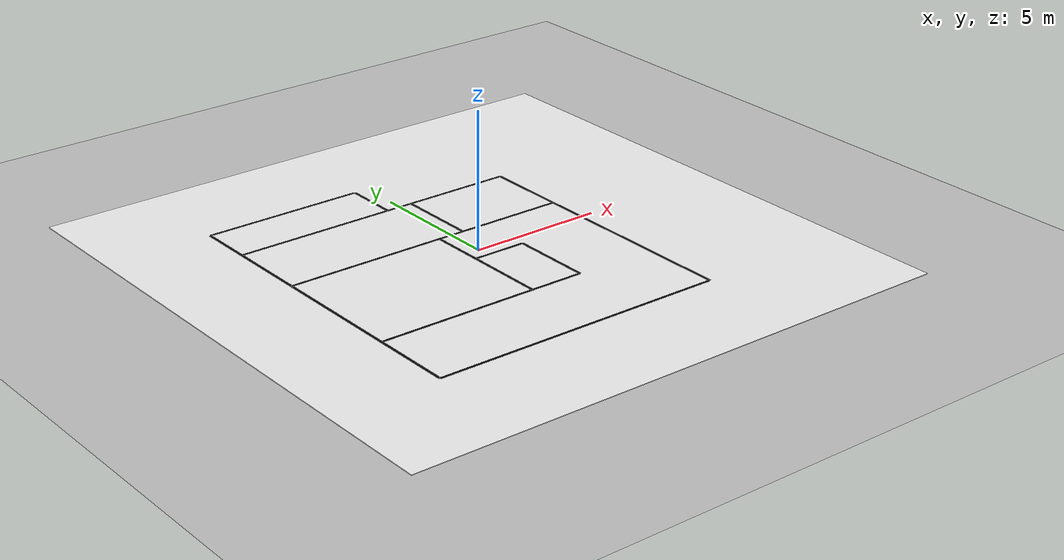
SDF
<sdf version='1.10'>
  <world name='empty_world'>
    <physics name='1ms' type='ignored'>
      <max_step_size>0.001</max_step_size>
      <real_time_factor>1</real_time_factor>
      <real_time_update_rate>1000</real_time_update_rate>
    </physics>
    <plugin name='gz::sim::systems::Physics' filename='gz-sim-physics-system'/>
    <plugin name='gz::sim::systems::UserCommands' filename='gz-sim-user-commands-system'/>
    <plugin name='gz::sim::systems::SceneBroadcaster' filename='gz-sim-scene-broadcaster-system'/>
    <plugin name='gz::sim::systems::Contact' filename='gz-sim-contact-system'/>
    <plugin name='gz::sim::systems::Sensors' filename='gz-sim-sensors-system'>
      <render_engine>ogre2</render_engine>
    </plugin>
    <gravity>0 0 -9.8000000000000007</gravity>
    <magnetic_field>5.5644999999999998e-06 2.2875799999999999e-05 -4.2388400000000002e-05</magnetic_field>
    <atmosphere type='adiabatic'/>
    <scene>
      <ambient>0.400000006 0.400000006 0.400000006 1</ambient>
      <background>0.827000022 0.80400002 1 1</background>
      <shadows>true</shadows>
    </scene>
    <model name='ground_plane'>
      <static>true</static>
      <link name='link'>
        <collision name='collision'>
          <geometry>
            <plane>
              <normal>0 0 1</normal>
              <size>100 100</size>
            </plane>
          </geometry>
          <surface>
            <friction>
              <ode/>
            </friction>
            <bounce/>
            <contact/>
          </surface>
        </collision>
        <visual name='visual'>
          <geometry>
            <plane>
              <normal>0 0 1</normal>
              <size>100 100</size>
            </plane>
          </geometry>
          <material>
            <ambient>0.800000012 0.800000012 0.800000012 1</ambient>
            <diffuse>0.800000012 0.800000012 0.800000012 1</diffuse>
            <specular>0.800000012 0.800000012 0.800000012 1</specular>
          </material>
        </visual>
        <pose>0 0 0 0 0 0</pose>
        <inertial>
          <pose>0 0 0 0 0 0</pose>
          <mass>1</mass>
          <inertia>
            <ixx>1</ixx>
            <ixy>0</ixy>
            <ixz>0</ixz>
            <iyy>1</iyy>
            <iyz>0</iyz>
            <izz>1</izz>
          </inertia>
        </inertial>
        <enable_wind>false</enable_wind>
      </link>
      <pose>0 0 0 0 0 0</pose>
      <self_collide>false</self_collide>
    </model>

    <model name='line_0'>
      <pose>-6.5 0 0 0 0 0</pose>
      <link name='box_link'>
        <inertial>
          <inertia>
            <ixx>0.16666</ixx>
            <ixy>0</ixy>
            <ixz>0</ixz>
            <iyy>0.16666</iyy>
            <iyz>0</iyz>
            <izz>0.16666</izz>
          </inertia>
          <mass>1</mass>
          <pose>0 0 0 0 0 0</pose>
        </inertial>
        <collision name='box_collision'>
          <geometry>
            <box>
              <size>0.10000000000000001 13 0.025000000000000001</size>
            </box>
          </geometry>
          <surface>
            <friction>
              <ode/>
            </friction>
            <bounce/>
            <contact/>
          </surface>
        </collision>
        <visual name='box_visual'>
          <geometry>
            <box>
              <size>0.10000000000000001 13 0.025000000000000001</size>
            </box>
          </geometry>
          <material>
            <ambient>0.300000012 0.300000012 0.300000012 1</ambient>
            <diffuse>0 0 0 1</diffuse>
            <specular>1 1 1 1</specular>
          </material>
        </visual>
        <pose>0 0 0 0 0 0</pose>
        <enable_wind>false</enable_wind>
      </link>
      <static>true</static>
      <self_collide>false</self_collide>
    </model>
    <model name='line_1'>
      <pose>-1 -6.5 0 0 0 0</pose>
      <link name='box_link'>
        <inertial>
          <inertia>
            <ixx>0.16666</ixx>
            <ixy>0</ixy>
            <ixz>0</ixz>
            <iyy>0.16666</iyy>
            <iyz>0</iyz>
            <izz>0.16666</izz>
          </inertia>
          <mass>1</mass>
          <pose>0 0 0 0 0 0</pose>
        </inertial>
        <collision name='box_collision'>
          <geometry>
            <box>
              <size>11 0.10000000000000001 0.025000000000000001</size>
            </box>
          </geometry>
          <surface>
            <friction>
              <ode/>
            </friction>
            <bounce/>
            <contact/>
          </surface>
        </collision>
        <visual name='box_visual'>
          <geometry>
            <box>
              <size>11 0.10000000000000001 0.025000000000000001</size>
            </box>
          </geometry>
          <material>
            <ambient>0.300000012 0.300000012 0.300000012 1</ambient>
            <diffuse>0 0 0 1</diffuse>
            <specular>1 1 1 1</specular>
          </material>
        </visual>
        <pose>0 0 0 0 0 0</pose>
        <enable_wind>false</enable_wind>
      </link>
      <static>true</static>
      <self_collide>false</self_collide>
    </model>
    <model name='line_2'>
      <pose>4.5 -1 0 0 0 0</pose>
      <link name='box_link'>
        <inertial>
          <inertia>
            <ixx>0.16666</ixx>
            <ixy>0</ixy>
            <ixz>0</ixz>
            <iyy>0.16666</iyy>
            <iyz>0</iyz>
            <izz>0.16666</izz>
          </inertia>
          <mass>1</mass>
          <pose>0 0 0 0 0 0</pose>
        </inertial>
        <collision name='box_collision'>
          <geometry>
            <box>
              <size>0.10000000000000001 11 0.025000000000000001</size>
            </box>
          </geometry>
          <surface>
            <friction>
              <ode/>
            </friction>
            <bounce/>
            <contact/>
          </surface>
        </collision>
        <visual name='box_visual'>
          <geometry>
            <box>
              <size>0.10000000000000001 11 0.025000000000000001</size>
            </box>
          </geometry>
          <material>
            <ambient>0.300000012 0.300000012 0.300000012 1</ambient>
            <diffuse>0 0 0 1</diffuse>
            <specular>1 1 1 1</specular>
          </material>
        </visual>
        <pose>0 0 0 0 0 0</pose>
        <enable_wind>false</enable_wind>
      </link>
      <static>true</static>
      <self_collide>false</self_collide>
    </model>
    <model name='line_3'>
      <pose>-1 1.5 0 0 0 0</pose>
      <link name='box_link'>
        <inertial>
          <inertia>
            <ixx>0.16666</ixx>
            <ixy>0</ixy>
            <ixz>0</ixz>
            <iyy>0.16666</iyy>
            <iyz>0</iyz>
            <izz>0.16666</izz>
          </inertia>
          <mass>1</mass>
          <pose>0 0 0 0 0 0</pose>
        </inertial>
        <collision name='box_collision'>
          <geometry>
            <box>
              <size>11 0.10000000000000001 0.025000000000000001</size>
            </box>
          </geometry>
          <surface>
            <friction>
              <ode/>
            </friction>
            <bounce/>
            <contact/>
          </surface>
        </collision>
        <visual name='box_visual'>
          <geometry>
            <box>
              <size>11 0.10000000000000001 0.025000000000000001</size>
            </box>
          </geometry>
          <material>
            <ambient>0.300000012 0.300000012 0.300000012 1</ambient>
            <diffuse>0 0 0 1</diffuse>
            <specular>1 1 1 1</specular>
          </material>
        </visual>
        <pose>0 0 0 0 0 0</pose>
        <enable_wind>false</enable_wind>
      </link>
      <static>true</static>
      <self_collide>false</self_collide>
    </model>
    <model name='line_4'>
      <pose>-2.5 -3.5 0 0 0 0</pose>
      <link name='box_link'>
        <inertial>
          <inertia>
            <ixx>0.16666</ixx>
            <ixy>0</ixy>
            <ixz>0</ixz>
            <iyy>0.16666</iyy>
            <iyz>0</iyz>
            <izz>0.16666</izz>
          </inertia>
          <mass>1</mass>
          <pose>0 0 0 0 0 0</pose>
        </inertial>
        <collision name='box_collision'>
          <geometry>
            <box>
              <size>8 0.10000000000000001 0.025000000000000001</size>
            </box>
          </geometry>
          <surface>
            <friction>
              <ode/>
            </friction>
            <bounce/>
            <contact/>
          </surface>
        </collision>
        <visual name='box_visual'>
          <geometry>
            <box>
              <size>8 0.10000000000000001 0.025000000000000001</size>
            </box>
          </geometry>
          <material>
            <ambient>0.300000012 0.300000012 0.300000012 1</ambient>
            <diffuse>0 0 0 1</diffuse>
            <specular>1 1 1 1</specular>
          </material>
        </visual>
        <pose>0 0 0 0 0 0</pose>
        <enable_wind>false</enable_wind>
      </link>
      <static>true</static>
      <self_collide>false</self_collide>
    </model>
    <model name='line_5'>
      <pose>-0.5 -1 0 0 0 0</pose>
      <link name='box_link'>
        <inertial>
          <inertia>
            <ixx>0.16666</ixx>
            <ixy>0</ixy>
            <ixz>0</ixz>
            <iyy>0.16666</iyy>
            <iyz>0</iyz>
            <izz>0.16666</izz>
          </inertia>
          <mass>1</mass>
          <pose>0 0 0 0 0 0</pose>
        </inertial>
        <collision name='box_collision'>
          <geometry>
            <box>
              <size>0.10000000000000001 5 0.025000000000000001</size>
            </box>
          </geometry>
          <surface>
            <friction>
              <ode/>
            </friction>
            <bounce/>
            <contact/>
          </surface>
        </collision>
        <visual name='box_visual'>
          <geometry>
            <box>
              <size>0.10000000000000001 5 0.025000000000000001</size>
            </box>
          </geometry>
          <material>
            <ambient>0.300000012 0.300000012 0.300000012 1</ambient>
            <diffuse>0 0 0 1</diffuse>
            <specular>1 1 1 1</specular>
          </material>
        </visual>
        <pose>0 0 0 0 0 0</pose>
        <enable_wind>false</enable_wind>
      </link>
      <static>true</static>
      <self_collide>false</self_collide>
    </model>
    <model name='line_6'>
      <pose>1.5 -2 0 0 0 0</pose>
      <link name='box_link'>
        <inertial>
          <inertia>
            <ixx>0.16666</ixx>
            <ixy>0</ixy>
            <ixz>0</ixz>
            <iyy>0.16666</iyy>
            <iyz>0</iyz>
            <izz>0.16666</izz>
          </inertia>
          <mass>1</mass>
          <pose>0 0 0 0 0 0</pose>
        </inertial>
        <collision name='box_collision'>
          <geometry>
            <box>
              <size>0.10000000000000001 3 0.025000000000000001</size>
            </box>
          </geometry>
          <surface>
            <friction>
              <ode/>
            </friction>
            <bounce/>
            <contact/>
          </surface>
        </collision>
        <visual name='box_visual'>
          <geometry>
            <box>
              <size>0.10000000000000001 3 0.025000000000000001</size>
            </box>
          </geometry>
          <material>
            <ambient>0.300000012 0.300000012 0.300000012 1</ambient>
            <diffuse>0 0 0 1</diffuse>
            <specular>1 1 1 1</specular>
          </material>
        </visual>
        <pose>0 0 0 0 0 0</pose>
        <enable_wind>false</enable_wind>
      </link>
      <static>true</static>
      <self_collide>false</self_collide>
    </model>
    <model name='line_7'>
      <pose>0.5 -0.5 0 0 0 0</pose>
      <link name='box_link'>
        <inertial>
          <inertia>
            <ixx>0.16666</ixx>
            <ixy>0</ixy>
            <ixz>0</ixz>
            <iyy>0.16666</iyy>
            <iyz>0</iyz>
            <izz>0.16666</izz>
          </inertia>
          <mass>1</mass>
          <pose>0 0 0 0 0 0</pose>
        </inertial>
        <collision name='box_collision'>
          <geometry>
            <box>
              <size>2 0.10000000000000001 0.025000000000000001</size>
            </box>
          </geometry>
          <surface>
            <friction>
              <ode/>
            </friction>
            <bounce/>
            <contact/>
          </surface>
        </collision>
        <visual name='box_visual'>
          <geometry>
            <box>
              <size>2 0.10000000000000001 0.025000000000000001</size>
            </box>
          </geometry>
          <material>
            <ambient>0.300000012 0.300000012 0.300000012 1</ambient>
            <diffuse>0 0 0 1</diffuse>
            <specular>1 1 1 1</specular>
          </material>
        </visual>
        <pose>0 0 0 0 0 0</pose>
        <enable_wind>false</enable_wind>
      </link>
      <static>true</static>
      <self_collide>false</self_collide>
    </model>
    <model name='line_8'>
      <pose>0.5 3 0 0 0 0</pose>
      <link name='box_link'>
        <inertial>
          <inertia>
            <ixx>0.16666</ixx>
            <ixy>0</ixy>
            <ixz>0</ixz>
            <iyy>0.16666</iyy>
            <iyz>0</iyz>
            <izz>0.16666</izz>
          </inertia>
          <mass>1</mass>
          <pose>0 0 0 0 0 0</pose>
        </inertial>
        <collision name='box_collision'>
          <geometry>
            <box>
              <size>0.10000000000000001 3 0.025000000000000001</size>
            </box>
          </geometry>
          <surface>
            <friction>
              <ode/>
            </friction>
            <bounce/>
            <contact/>
          </surface>
        </collision>
        <visual name='box_visual'>
          <geometry>
            <box>
              <size>0.10000000000000001 3 0.025000000000000001</size>
            </box>
          </geometry>
          <material>
            <ambient>0.300000012 0.300000012 0.300000012 1</ambient>
            <diffuse>0 0 0 1</diffuse>
            <specular>1 1 1 1</specular>
          </material>
        </visual>
        <pose>0 0 0 0 0 0</pose>
        <enable_wind>false</enable_wind>
      </link>
      <static>true</static>
      <self_collide>false</self_collide>
    </model>
    <model name='line_9'>
      <pose>-1 4.5 0 0 0 0</pose>
      <link name='box_link'>
        <inertial>
          <inertia>
            <ixx>0.16666</ixx>
            <ixy>0</ixy>
            <ixz>0</ixz>
            <iyy>0.16666</iyy>
            <iyz>0</iyz>
            <izz>0.16666</izz>
          </inertia>
          <mass>1</mass>
          <pose>0 0 0 0 0 0</pose>
        </inertial>
        <collision name='box_collision'>
          <geometry>
            <box>
              <size>11 0.10000000000000001 0.025000000000000001</size>
            </box>
          </geometry>
          <surface>
            <friction>
              <ode/>
            </friction>
            <bounce/>
            <contact/>
          </surface>
        </collision>
        <visual name='box_visual'>
          <geometry>
            <box>
              <size>11 0.10000000000000001 0.025000000000000001</size>
            </box>
          </geometry>
          <material>
            <ambient>0.300000012 0.300000012 0.300000012 1</ambient>
            <diffuse>0 0 0 1</diffuse>
            <specular>1 1 1 1</specular>
          </material>
        </visual>
        <pose>0 0 0 0 0 0</pose>
        <enable_wind>false</enable_wind>
      </link>
      <static>true</static>
      <self_collide>false</self_collide>
    </model>
    <model name='line_10'>
      <pose>-3.5 6.5 0 0 0 0</pose>
      <link name='box_link'>
        <inertial>
          <inertia>
            <ixx>0.16666</ixx>
            <ixy>0</ixy>
            <ixz>0</ixz>
            <iyy>0.16666</iyy>
            <iyz>0</iyz>
            <izz>0.16666</izz>
          </inertia>
          <mass>1</mass>
          <pose>0 0 0 0 0 0</pose>
        </inertial>
        <collision name='box_collision'>
          <geometry>
            <box>
              <size>6 0.10000000000000001 0.025000000000000001</size>
            </box>
          </geometry>
          <surface>
            <friction>
              <ode/>
            </friction>
            <bounce/>
            <contact/>
          </surface>
        </collision>
        <visual name='box_visual'>
          <geometry>
            <box>
              <size>6 0.10000000000000001 0.025000000000000001</size>
            </box>
          </geometry>
          <material>
            <ambient>0.300000012 0.300000012 0.300000012 1</ambient>
            <diffuse>0 0 0 1</diffuse>
            <specular>1 1 1 1</specular>
          </material>
        </visual>
        <pose>0 0 0 0 0 0</pose>
        <enable_wind>false</enable_wind>
      </link>
      <static>true</static>
      <self_collide>false</self_collide>
    </model>
    <model name='line_11'>
      <pose>-0.5 5.5 0 0 0 0</pose>
      <link name='box_link'>
        <inertial>
          <inertia>
            <ixx>0.16666</ixx>
            <ixy>0</ixy>
            <ixz>0</ixz>
            <iyy>0.16666</iyy>
            <iyz>0</iyz>
            <izz>0.16666</izz>
          </inertia>
          <mass>1</mass>
          <pose>0 0 0 0 0 0</pose>
        </inertial>
        <collision name='box_collision'>
          <geometry>
            <box>
              <size>0.10000000000000001 2 0.025000000000000001</size>
            </box>
          </geometry>
          <surface>
            <friction>
              <ode/>
            </friction>
            <bounce/>
            <contact/>
          </surface>
        </collision>
        <visual name='box_visual'>
          <geometry>
            <box>
              <size>0.10000000000000001 2 0.025000000000000001</size>
            </box>
          </geometry>
          <material>
            <ambient>0.300000012 0.300000012 0.300000012 1</ambient>
            <diffuse>0 0 0 1</diffuse>
            <specular>1 1 1 1</specular>
          </material>
        </visual>
        <pose>0 0 0 0 0 0</pose>
        <enable_wind>false</enable_wind>
      </link>
      <static>true</static>
      <self_collide>false</self_collide>
    </model>

    <model name='floor'>
      <pose>0 0 0 0 0 0</pose>
      <link name='box_link'>
        <inertial>
          <inertia>
            <ixx>0.16666</ixx>
            <ixy>0</ixy>
            <ixz>0</ixz>
            <iyy>0.16666</iyy>
            <iyz>0</iyz>
            <izz>0.16666</izz>
          </inertia>
          <mass>1</mass>
          <pose>0 0 0 0 0 0</pose>
        </inertial>
        <collision name='box_collision'>
          <geometry>
            <box>
              <size>21 21 0.024</size>
            </box>
          </geometry>
          <surface>
            <friction>
              <ode/>
            </friction>
            <bounce/>
            <contact/>
          </surface>
        </collision>
        <visual name='box_visual'>
          <geometry>
            <box>
              <size>21 21 0.024</size>
            </box>
          </geometry>
          <material>
            <ambient>0.300000012 0.300000012 0.300000012 1</ambient>
            <diffuse>1 1 1 1</diffuse>
            <specular>1 1 1 1</specular>
          </material>
        </visual>
        <pose>0 0 0 0 0 0</pose>
        <enable_wind>false</enable_wind>
      </link>
      <static>true</static>
      <self_collide>false</self_collide>
    </model>

    <light name='sun' type='directional'>
      <pose>0 0 10 0 0 0</pose>
      <cast_shadows>true</cast_shadows>
      <intensity>1</intensity>
      <direction>-0.5 0.10000000000000001 -0.90000000000000002</direction>
      <diffuse>0.800000012 0.800000012 0.800000012 1</diffuse>
      <specular>0.200000003 0.200000003 0.200000003 1</specular>
      <attenuation>
        <range>1000</range>
        <linear>0.0099999997764825821</linear>
        <constant>0.89999997615814209</constant>
        <quadratic>0.0010000000474974513</quadratic>
      </attenuation>
      <spot>
        <inner_angle>0</inner_angle>
        <outer_angle>0</outer_angle>
        <falloff>0</falloff>
      </spot>
    </light>
  </world>
</sdf>
